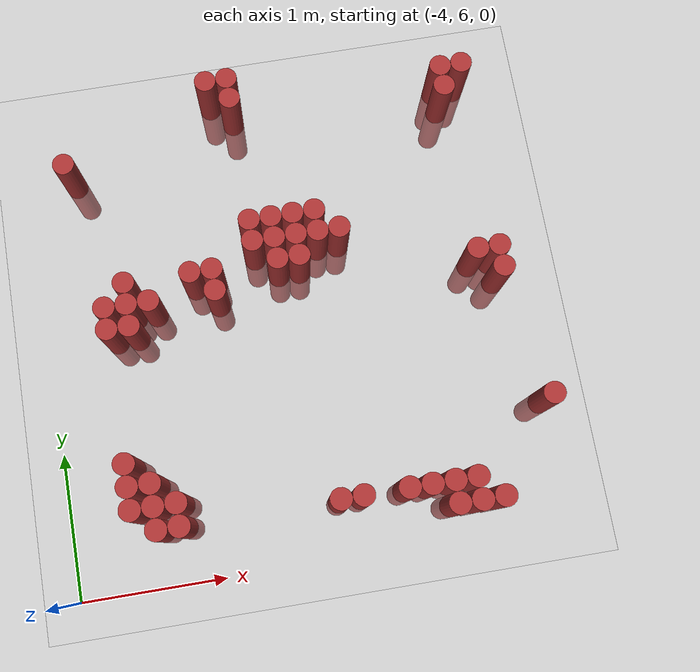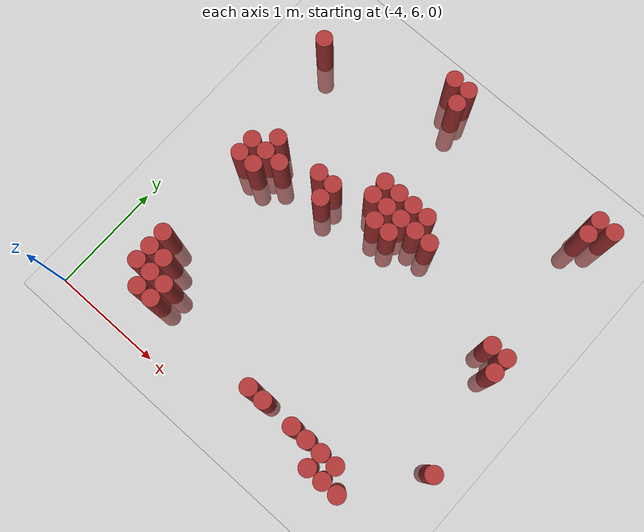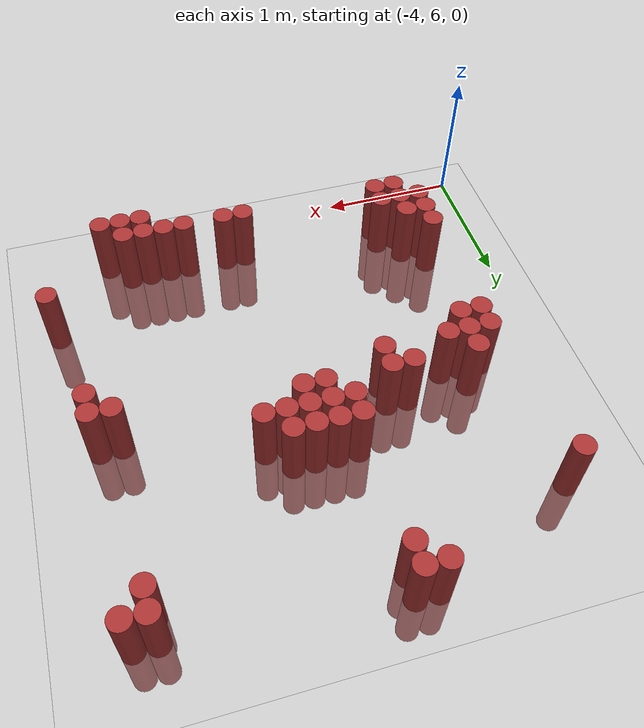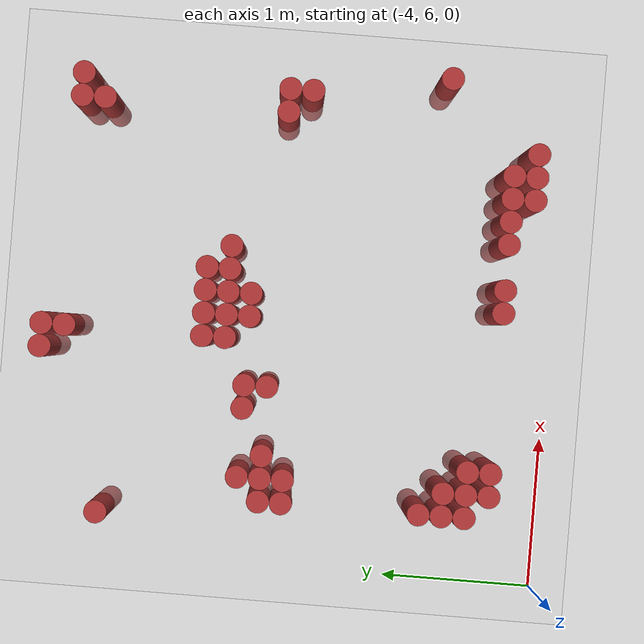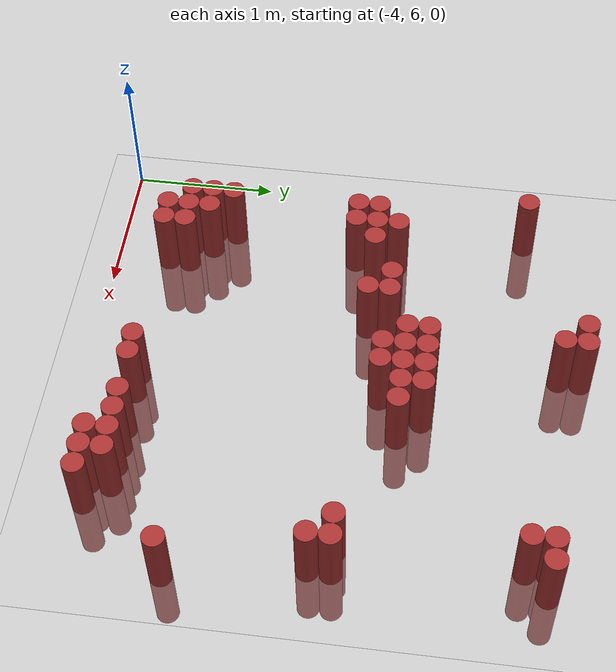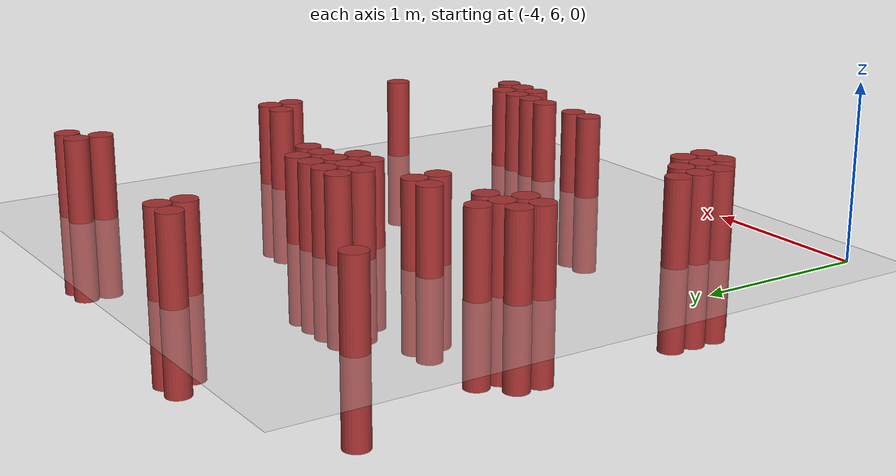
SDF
<sdf version="1.6">
 <world name="default">
  <model name="ground_plane">
   <static>1</static>
   <link name="link">
    <collision name="collision">
     <geometry><plane><normal>0 0 1</normal><size>100 100</size></plane></geometry>
     <surface><friction><ode><mu>100</mu><mu2>50</mu2></ode></friction></surface>
    </collision>
    <visual name="visual">
     <cast_shadows>0</cast_shadows>
     <geometry><plane><normal>0 0 1</normal><size>100 100</size></plane></geometry>
     <material>
      <script><uri>file://media/materials/scripts/gazebo.material</uri><name>Gazebo/Grey</name></script>
     </material>
    </visual>
   </link>
  </model>
  <model name="unit_cylinder_164">
   <static>1</static>
   <pose>-3.675000 8.925000 0.000000 0.000000 0.000000 0.000000</pose>
   <link name="link">
    <inertial>
     <mass>1</mass>
     <inertia><ixx>0.145833</ixx><ixy>0</ixy><ixz>0</ixz><iyy>0.145833</iyy><iyz>0</iyz><izz>0.125</izz></inertia>
    </inertial>
    <collision name="collision">
     <geometry><cylinder><radius>0.075000</radius><length>1</length></cylinder></geometry>
    </collision>
    <visual name="visual">
     <geometry><cylinder><radius>0.075000</radius><length>1</length></cylinder></geometry>
     <material>
      <ambient>0.648000 0.192000 0.192000 1</ambient>
      <diffuse>0.648000 0.192000 0.192000 1</diffuse>
     </material>
     <material>
      <script><name>Gazebo/Grey</name><uri>file://media/materials/scripts/gazebo.material</uri></script>
     </material>
    </visual>
   </link>
  </model>
  <model name="unit_cylinder_165">
   <static>1</static>
   <pose>-3.525000 6.525000 0.000000 0.000000 0.000000 0.000000</pose>
   <link name="link">
    <inertial>
     <mass>1</mass>
     <inertia><ixx>0.145833</ixx><ixy>0</ixy><ixz>0</ixz><iyy>0.145833</iyy><iyz>0</iyz><izz>0.125</izz></inertia>
    </inertial>
    <collision name="collision">
     <geometry><cylinder><radius>0.075000</radius><length>1</length></cylinder></geometry>
    </collision>
    <visual name="visual">
     <geometry><cylinder><radius>0.075000</radius><length>1</length></cylinder></geometry>
     <material>
      <ambient>0.648000 0.192000 0.192000 1</ambient>
      <diffuse>0.648000 0.192000 0.192000 1</diffuse>
     </material>
     <material>
      <script><name>Gazebo/Grey</name><uri>file://media/materials/scripts/gazebo.material</uri></script>
     </material>
    </visual>
   </link>
  </model>
  <model name="unit_cylinder_166">
   <static>1</static>
   <pose>-3.525000 6.675000 0.000000 0.000000 0.000000 0.000000</pose>
   <link name="link">
    <inertial>
     <mass>1</mass>
     <inertia><ixx>0.145833</ixx><ixy>0</ixy><ixz>0</ixz><iyy>0.145833</iyy><iyz>0</iyz><izz>0.125</izz></inertia>
    </inertial>
    <collision name="collision">
     <geometry><cylinder><radius>0.075000</radius><length>1</length></cylinder></geometry>
    </collision>
    <visual name="visual">
     <geometry><cylinder><radius>0.075000</radius><length>1</length></cylinder></geometry>
     <material>
      <ambient>0.648000 0.192000 0.192000 1</ambient>
      <diffuse>0.648000 0.192000 0.192000 1</diffuse>
     </material>
     <material>
      <script><name>Gazebo/Grey</name><uri>file://media/materials/scripts/gazebo.material</uri></script>
     </material>
    </visual>
   </link>
  </model>
  <model name="unit_cylinder_167">
   <static>1</static>
   <pose>-3.525000 6.825000 0.000000 0.000000 0.000000 0.000000</pose>
   <link name="link">
    <inertial>
     <mass>1</mass>
     <inertia><ixx>0.145833</ixx><ixy>0</ixy><ixz>0</ixz><iyy>0.145833</iyy><iyz>0</iyz><izz>0.125</izz></inertia>
    </inertial>
    <collision name="collision">
     <geometry><cylinder><radius>0.075000</radius><length>1</length></cylinder></geometry>
    </collision>
    <visual name="visual">
     <geometry><cylinder><radius>0.075000</radius><length>1</length></cylinder></geometry>
     <material>
      <ambient>0.648000 0.192000 0.192000 1</ambient>
      <diffuse>0.648000 0.192000 0.192000 1</diffuse>
     </material>
     <material>
      <script><name>Gazebo/Grey</name><uri>file://media/materials/scripts/gazebo.material</uri></script>
     </material>
    </visual>
   </link>
  </model>
  <model name="unit_cylinder_168">
   <static>1</static>
   <pose>-3.525000 7.725000 0.000000 0.000000 0.000000 0.000000</pose>
   <link name="link">
    <inertial>
     <mass>1</mass>
     <inertia><ixx>0.145833</ixx><ixy>0</ixy><ixz>0</ixz><iyy>0.145833</iyy><iyz>0</iyz><izz>0.125</izz></inertia>
    </inertial>
    <collision name="collision">
     <geometry><cylinder><radius>0.075000</radius><length>1</length></cylinder></geometry>
    </collision>
    <visual name="visual">
     <geometry><cylinder><radius>0.075000</radius><length>1</length></cylinder></geometry>
     <material>
      <ambient>0.648000 0.192000 0.192000 1</ambient>
      <diffuse>0.648000 0.192000 0.192000 1</diffuse>
     </material>
     <material>
      <script><name>Gazebo/Grey</name><uri>file://media/materials/scripts/gazebo.material</uri></script>
     </material>
    </visual>
   </link>
  </model>
  <model name="unit_cylinder_169">
   <static>1</static>
   <pose>-3.525000 7.875000 0.000000 0.000000 0.000000 0.000000</pose>
   <link name="link">
    <inertial>
     <mass>1</mass>
     <inertia><ixx>0.145833</ixx><ixy>0</ixy><ixz>0</ixz><iyy>0.145833</iyy><iyz>0</iyz><izz>0.125</izz></inertia>
    </inertial>
    <collision name="collision">
     <geometry><cylinder><radius>0.075000</radius><length>1</length></cylinder></geometry>
    </collision>
    <visual name="visual">
     <geometry><cylinder><radius>0.075000</radius><length>1</length></cylinder></geometry>
     <material>
      <ambient>0.648000 0.192000 0.192000 1</ambient>
      <diffuse>0.648000 0.192000 0.192000 1</diffuse>
     </material>
     <material>
      <script><name>Gazebo/Grey</name><uri>file://media/materials/scripts/gazebo.material</uri></script>
     </material>
    </visual>
   </link>
  </model>
  <model name="unit_cylinder_170">
   <static>1</static>
   <pose>-3.375000 6.375000 0.000000 0.000000 0.000000 0.000000</pose>
   <link name="link">
    <inertial>
     <mass>1</mass>
     <inertia><ixx>0.145833</ixx><ixy>0</ixy><ixz>0</ixz><iyy>0.145833</iyy><iyz>0</iyz><izz>0.125</izz></inertia>
    </inertial>
    <collision name="collision">
     <geometry><cylinder><radius>0.075000</radius><length>1</length></cylinder></geometry>
    </collision>
    <visual name="visual">
     <geometry><cylinder><radius>0.075000</radius><length>1</length></cylinder></geometry>
     <material>
      <ambient>0.648000 0.192000 0.192000 1</ambient>
      <diffuse>0.648000 0.192000 0.192000 1</diffuse>
     </material>
     <material>
      <script><name>Gazebo/Grey</name><uri>file://media/materials/scripts/gazebo.material</uri></script>
     </material>
    </visual>
   </link>
  </model>
  <model name="unit_cylinder_171">
   <static>1</static>
   <pose>-3.375000 6.525000 0.000000 0.000000 0.000000 0.000000</pose>
   <link name="link">
    <inertial>
     <mass>1</mass>
     <inertia><ixx>0.145833</ixx><ixy>0</ixy><ixz>0</ixz><iyy>0.145833</iyy><iyz>0</iyz><izz>0.125</izz></inertia>
    </inertial>
    <collision name="collision">
     <geometry><cylinder><radius>0.075000</radius><length>1</length></cylinder></geometry>
    </collision>
    <visual name="visual">
     <geometry><cylinder><radius>0.075000</radius><length>1</length></cylinder></geometry>
     <material>
      <ambient>0.648000 0.192000 0.192000 1</ambient>
      <diffuse>0.648000 0.192000 0.192000 1</diffuse>
     </material>
     <material>
      <script><name>Gazebo/Grey</name><uri>file://media/materials/scripts/gazebo.material</uri></script>
     </material>
    </visual>
   </link>
  </model>
  <model name="unit_cylinder_172">
   <static>1</static>
   <pose>-3.375000 6.675000 0.000000 0.000000 0.000000 0.000000</pose>
   <link name="link">
    <inertial>
     <mass>1</mass>
     <inertia><ixx>0.145833</ixx><ixy>0</ixy><ixz>0</ixz><iyy>0.145833</iyy><iyz>0</iyz><izz>0.125</izz></inertia>
    </inertial>
    <collision name="collision">
     <geometry><cylinder><radius>0.075000</radius><length>1</length></cylinder></geometry>
    </collision>
    <visual name="visual">
     <geometry><cylinder><radius>0.075000</radius><length>1</length></cylinder></geometry>
     <material>
      <ambient>0.648000 0.192000 0.192000 1</ambient>
      <diffuse>0.648000 0.192000 0.192000 1</diffuse>
     </material>
     <material>
      <script><name>Gazebo/Grey</name><uri>file://media/materials/scripts/gazebo.material</uri></script>
     </material>
    </visual>
   </link>
  </model>
  <model name="unit_cylinder_173">
   <static>1</static>
   <pose>-3.375000 7.725000 0.000000 0.000000 0.000000 0.000000</pose>
   <link name="link">
    <inertial>
     <mass>1</mass>
     <inertia><ixx>0.145833</ixx><ixy>0</ixy><ixz>0</ixz><iyy>0.145833</iyy><iyz>0</iyz><izz>0.125</izz></inertia>
    </inertial>
    <collision name="collision">
     <geometry><cylinder><radius>0.075000</radius><length>1</length></cylinder></geometry>
    </collision>
    <visual name="visual">
     <geometry><cylinder><radius>0.075000</radius><length>1</length></cylinder></geometry>
     <material>
      <ambient>0.648000 0.192000 0.192000 1</ambient>
      <diffuse>0.648000 0.192000 0.192000 1</diffuse>
     </material>
     <material>
      <script><name>Gazebo/Grey</name><uri>file://media/materials/scripts/gazebo.material</uri></script>
     </material>
    </visual>
   </link>
  </model>
  <model name="unit_cylinder_174">
   <static>1</static>
   <pose>-3.375000 7.875000 0.000000 0.000000 0.000000 0.000000</pose>
   <link name="link">
    <inertial>
     <mass>1</mass>
     <inertia><ixx>0.145833</ixx><ixy>0</ixy><ixz>0</ixz><iyy>0.145833</iyy><iyz>0</iyz><izz>0.125</izz></inertia>
    </inertial>
    <collision name="collision">
     <geometry><cylinder><radius>0.075000</radius><length>1</length></cylinder></geometry>
    </collision>
    <visual name="visual">
     <geometry><cylinder><radius>0.075000</radius><length>1</length></cylinder></geometry>
     <material>
      <ambient>0.648000 0.192000 0.192000 1</ambient>
      <diffuse>0.648000 0.192000 0.192000 1</diffuse>
     </material>
     <material>
      <script><name>Gazebo/Grey</name><uri>file://media/materials/scripts/gazebo.material</uri></script>
     </material>
    </visual>
   </link>
  </model>
  <model name="unit_cylinder_175">
   <static>1</static>
   <pose>-3.375000 8.025000 0.000000 0.000000 0.000000 0.000000</pose>
   <link name="link">
    <inertial>
     <mass>1</mass>
     <inertia><ixx>0.145833</ixx><ixy>0</ixy><ixz>0</ixz><iyy>0.145833</iyy><iyz>0</iyz><izz>0.125</izz></inertia>
    </inertial>
    <collision name="collision">
     <geometry><cylinder><radius>0.075000</radius><length>1</length></cylinder></geometry>
    </collision>
    <visual name="visual">
     <geometry><cylinder><radius>0.075000</radius><length>1</length></cylinder></geometry>
     <material>
      <ambient>0.648000 0.192000 0.192000 1</ambient>
      <diffuse>0.648000 0.192000 0.192000 1</diffuse>
     </material>
     <material>
      <script><name>Gazebo/Grey</name><uri>file://media/materials/scripts/gazebo.material</uri></script>
     </material>
    </visual>
   </link>
  </model>
  <model name="unit_cylinder_176">
   <static>1</static>
   <pose>-3.225000 6.375000 0.000000 0.000000 0.000000 0.000000</pose>
   <link name="link">
    <inertial>
     <mass>1</mass>
     <inertia><ixx>0.145833</ixx><ixy>0</ixy><ixz>0</ixz><iyy>0.145833</iyy><iyz>0</iyz><izz>0.125</izz></inertia>
    </inertial>
    <collision name="collision">
     <geometry><cylinder><radius>0.075000</radius><length>1</length></cylinder></geometry>
    </collision>
    <visual name="visual">
     <geometry><cylinder><radius>0.075000</radius><length>1</length></cylinder></geometry>
     <material>
      <ambient>0.648000 0.192000 0.192000 1</ambient>
      <diffuse>0.648000 0.192000 0.192000 1</diffuse>
     </material>
     <material>
      <script><name>Gazebo/Grey</name><uri>file://media/materials/scripts/gazebo.material</uri></script>
     </material>
    </visual>
   </link>
  </model>
  <model name="unit_cylinder_177">
   <static>1</static>
   <pose>-3.225000 6.525000 0.000000 0.000000 0.000000 0.000000</pose>
   <link name="link">
    <inertial>
     <mass>1</mass>
     <inertia><ixx>0.145833</ixx><ixy>0</ixy><ixz>0</ixz><iyy>0.145833</iyy><iyz>0</iyz><izz>0.125</izz></inertia>
    </inertial>
    <collision name="collision">
     <geometry><cylinder><radius>0.075000</radius><length>1</length></cylinder></geometry>
    </collision>
    <visual name="visual">
     <geometry><cylinder><radius>0.075000</radius><length>1</length></cylinder></geometry>
     <material>
      <ambient>0.648000 0.192000 0.192000 1</ambient>
      <diffuse>0.648000 0.192000 0.192000 1</diffuse>
     </material>
     <material>
      <script><name>Gazebo/Grey</name><uri>file://media/materials/scripts/gazebo.material</uri></script>
     </material>
    </visual>
   </link>
  </model>
  <model name="unit_cylinder_178">
   <static>1</static>
   <pose>-3.225000 7.875000 0.000000 0.000000 0.000000 0.000000</pose>
   <link name="link">
    <inertial>
     <mass>1</mass>
     <inertia><ixx>0.145833</ixx><ixy>0</ixy><ixz>0</ixz><iyy>0.145833</iyy><iyz>0</iyz><izz>0.125</izz></inertia>
    </inertial>
    <collision name="collision">
     <geometry><cylinder><radius>0.075000</radius><length>1</length></cylinder></geometry>
    </collision>
    <visual name="visual">
     <geometry><cylinder><radius>0.075000</radius><length>1</length></cylinder></geometry>
     <material>
      <ambient>0.648000 0.192000 0.192000 1</ambient>
      <diffuse>0.648000 0.192000 0.192000 1</diffuse>
     </material>
     <material>
      <script><name>Gazebo/Grey</name><uri>file://media/materials/scripts/gazebo.material</uri></script>
     </material>
    </visual>
   </link>
  </model>
  <model name="unit_cylinder_180">
   <static>1</static>
   <pose>-2.925000 8.025000 0.000000 0.000000 0.000000 0.000000</pose>
   <link name="link">
    <inertial>
     <mass>1</mass>
     <inertia><ixx>0.145833</ixx><ixy>0</ixy><ixz>0</ixz><iyy>0.145833</iyy><iyz>0</iyz><izz>0.125</izz></inertia>
    </inertial>
    <collision name="collision">
     <geometry><cylinder><radius>0.075000</radius><length>1</length></cylinder></geometry>
    </collision>
    <visual name="visual">
     <geometry><cylinder><radius>0.075000</radius><length>1</length></cylinder></geometry>
     <material>
      <ambient>0.648000 0.192000 0.192000 1</ambient>
      <diffuse>0.648000 0.192000 0.192000 1</diffuse>
     </material>
     <material>
      <script><name>Gazebo/Grey</name><uri>file://media/materials/scripts/gazebo.material</uri></script>
     </material>
    </visual>
   </link>
  </model>
  <model name="unit_cylinder_181">
   <static>1</static>
   <pose>-2.775000 7.875000 0.000000 0.000000 0.000000 0.000000</pose>
   <link name="link">
    <inertial>
     <mass>1</mass>
     <inertia><ixx>0.145833</ixx><ixy>0</ixy><ixz>0</ixz><iyy>0.145833</iyy><iyz>0</iyz><izz>0.125</izz></inertia>
    </inertial>
    <collision name="collision">
     <geometry><cylinder><radius>0.075000</radius><length>1</length></cylinder></geometry>
    </collision>
    <visual name="visual">
     <geometry><cylinder><radius>0.075000</radius><length>1</length></cylinder></geometry>
     <material>
      <ambient>0.648000 0.192000 0.192000 1</ambient>
      <diffuse>0.648000 0.192000 0.192000 1</diffuse>
     </material>
     <material>
      <script><name>Gazebo/Grey</name><uri>file://media/materials/scripts/gazebo.material</uri></script>
     </material>
    </visual>
   </link>
  </model>
  <model name="unit_cylinder_182">
   <static>1</static>
   <pose>-2.775000 8.025000 0.000000 0.000000 0.000000 0.000000</pose>
   <link name="link">
    <inertial>
     <mass>1</mass>
     <inertia><ixx>0.145833</ixx><ixy>0</ixy><ixz>0</ixz><iyy>0.145833</iyy><iyz>0</iyz><izz>0.125</izz></inertia>
    </inertial>
    <collision name="collision">
     <geometry><cylinder><radius>0.075000</radius><length>1</length></cylinder></geometry>
    </collision>
    <visual name="visual">
     <geometry><cylinder><radius>0.075000</radius><length>1</length></cylinder></geometry>
     <material>
      <ambient>0.648000 0.192000 0.192000 1</ambient>
      <diffuse>0.648000 0.192000 0.192000 1</diffuse>
     </material>
     <material>
      <script><name>Gazebo/Grey</name><uri>file://media/materials/scripts/gazebo.material</uri></script>
     </material>
    </visual>
   </link>
  </model>
  <model name="unit_cylinder_183">
   <static>1</static>
   <pose>-2.625000 9.375000 0.000000 0.000000 0.000000 0.000000</pose>
   <link name="link">
    <inertial>
     <mass>1</mass>
     <inertia><ixx>0.145833</ixx><ixy>0</ixy><ixz>0</ixz><iyy>0.145833</iyy><iyz>0</iyz><izz>0.125</izz></inertia>
    </inertial>
    <collision name="collision">
     <geometry><cylinder><radius>0.075000</radius><length>1</length></cylinder></geometry>
    </collision>
    <visual name="visual">
     <geometry><cylinder><radius>0.075000</radius><length>1</length></cylinder></geometry>
     <material>
      <ambient>0.648000 0.192000 0.192000 1</ambient>
      <diffuse>0.648000 0.192000 0.192000 1</diffuse>
     </material>
     <material>
      <script><name>Gazebo/Grey</name><uri>file://media/materials/scripts/gazebo.material</uri></script>
     </material>
    </visual>
   </link>
  </model>
  <model name="unit_cylinder_184">
   <static>1</static>
   <pose>-2.475000 8.175000 0.000000 0.000000 0.000000 0.000000</pose>
   <link name="link">
    <inertial>
     <mass>1</mass>
     <inertia><ixx>0.145833</ixx><ixy>0</ixy><ixz>0</ixz><iyy>0.145833</iyy><iyz>0</iyz><izz>0.125</izz></inertia>
    </inertial>
    <collision name="collision">
     <geometry><cylinder><radius>0.075000</radius><length>1</length></cylinder></geometry>
    </collision>
    <visual name="visual">
     <geometry><cylinder><radius>0.075000</radius><length>1</length></cylinder></geometry>
     <material>
      <ambient>0.648000 0.192000 0.192000 1</ambient>
      <diffuse>0.648000 0.192000 0.192000 1</diffuse>
     </material>
     <material>
      <script><name>Gazebo/Grey</name><uri>file://media/materials/scripts/gazebo.material</uri></script>
     </material>
    </visual>
   </link>
  </model>
  <model name="unit_cylinder_185">
   <static>1</static>
   <pose>-2.475000 8.325000 0.000000 0.000000 0.000000 0.000000</pose>
   <link name="link">
    <inertial>
     <mass>1</mass>
     <inertia><ixx>0.145833</ixx><ixy>0</ixy><ixz>0</ixz><iyy>0.145833</iyy><iyz>0</iyz><izz>0.125</izz></inertia>
    </inertial>
    <collision name="collision">
     <geometry><cylinder><radius>0.075000</radius><length>1</length></cylinder></geometry>
    </collision>
    <visual name="visual">
     <geometry><cylinder><radius>0.075000</radius><length>1</length></cylinder></geometry>
     <material>
      <ambient>0.648000 0.192000 0.192000 1</ambient>
      <diffuse>0.648000 0.192000 0.192000 1</diffuse>
     </material>
     <material>
      <script><name>Gazebo/Grey</name><uri>file://media/materials/scripts/gazebo.material</uri></script>
     </material>
    </visual>
   </link>
  </model>
  <model name="unit_cylinder_186">
   <static>1</static>
   <pose>-2.475000 9.225000 0.000000 0.000000 0.000000 0.000000</pose>
   <link name="link">
    <inertial>
     <mass>1</mass>
     <inertia><ixx>0.145833</ixx><ixy>0</ixy><ixz>0</ixz><iyy>0.145833</iyy><iyz>0</iyz><izz>0.125</izz></inertia>
    </inertial>
    <collision name="collision">
     <geometry><cylinder><radius>0.075000</radius><length>1</length></cylinder></geometry>
    </collision>
    <visual name="visual">
     <geometry><cylinder><radius>0.075000</radius><length>1</length></cylinder></geometry>
     <material>
      <ambient>0.648000 0.192000 0.192000 1</ambient>
      <diffuse>0.648000 0.192000 0.192000 1</diffuse>
     </material>
     <material>
      <script><name>Gazebo/Grey</name><uri>file://media/materials/scripts/gazebo.material</uri></script>
     </material>
    </visual>
   </link>
  </model>
  <model name="unit_cylinder_187">
   <static>1</static>
   <pose>-2.475000 9.375000 0.000000 0.000000 0.000000 0.000000</pose>
   <link name="link">
    <inertial>
     <mass>1</mass>
     <inertia><ixx>0.145833</ixx><ixy>0</ixy><ixz>0</ixz><iyy>0.145833</iyy><iyz>0</iyz><izz>0.125</izz></inertia>
    </inertial>
    <collision name="collision">
     <geometry><cylinder><radius>0.075000</radius><length>1</length></cylinder></geometry>
    </collision>
    <visual name="visual">
     <geometry><cylinder><radius>0.075000</radius><length>1</length></cylinder></geometry>
     <material>
      <ambient>0.648000 0.192000 0.192000 1</ambient>
      <diffuse>0.648000 0.192000 0.192000 1</diffuse>
     </material>
     <material>
      <script><name>Gazebo/Grey</name><uri>file://media/materials/scripts/gazebo.material</uri></script>
     </material>
    </visual>
   </link>
  </model>
  <model name="unit_cylinder_188">
   <static>1</static>
   <pose>-2.325000 8.025000 0.000000 0.000000 0.000000 0.000000</pose>
   <link name="link">
    <inertial>
     <mass>1</mass>
     <inertia><ixx>0.145833</ixx><ixy>0</ixy><ixz>0</ixz><iyy>0.145833</iyy><iyz>0</iyz><izz>0.125</izz></inertia>
    </inertial>
    <collision name="collision">
     <geometry><cylinder><radius>0.075000</radius><length>1</length></cylinder></geometry>
    </collision>
    <visual name="visual">
     <geometry><cylinder><radius>0.075000</radius><length>1</length></cylinder></geometry>
     <material>
      <ambient>0.648000 0.192000 0.192000 1</ambient>
      <diffuse>0.648000 0.192000 0.192000 1</diffuse>
     </material>
     <material>
      <script><name>Gazebo/Grey</name><uri>file://media/materials/scripts/gazebo.material</uri></script>
     </material>
    </visual>
   </link>
  </model>
  <model name="unit_cylinder_189">
   <static>1</static>
   <pose>-2.325000 8.175000 0.000000 0.000000 0.000000 0.000000</pose>
   <link name="link">
    <inertial>
     <mass>1</mass>
     <inertia><ixx>0.145833</ixx><ixy>0</ixy><ixz>0</ixz><iyy>0.145833</iyy><iyz>0</iyz><izz>0.125</izz></inertia>
    </inertial>
    <collision name="collision">
     <geometry><cylinder><radius>0.075000</radius><length>1</length></cylinder></geometry>
    </collision>
    <visual name="visual">
     <geometry><cylinder><radius>0.075000</radius><length>1</length></cylinder></geometry>
     <material>
      <ambient>0.648000 0.192000 0.192000 1</ambient>
      <diffuse>0.648000 0.192000 0.192000 1</diffuse>
     </material>
     <material>
      <script><name>Gazebo/Grey</name><uri>file://media/materials/scripts/gazebo.material</uri></script>
     </material>
    </visual>
   </link>
  </model>
  <model name="unit_cylinder_190">
   <static>1</static>
   <pose>-2.325000 8.325000 0.000000 0.000000 0.000000 0.000000</pose>
   <link name="link">
    <inertial>
     <mass>1</mass>
     <inertia><ixx>0.145833</ixx><ixy>0</ixy><ixz>0</ixz><iyy>0.145833</iyy><iyz>0</iyz><izz>0.125</izz></inertia>
    </inertial>
    <collision name="collision">
     <geometry><cylinder><radius>0.075000</radius><length>1</length></cylinder></geometry>
    </collision>
    <visual name="visual">
     <geometry><cylinder><radius>0.075000</radius><length>1</length></cylinder></geometry>
     <material>
      <ambient>0.648000 0.192000 0.192000 1</ambient>
      <diffuse>0.648000 0.192000 0.192000 1</diffuse>
     </material>
     <material>
      <script><name>Gazebo/Grey</name><uri>file://media/materials/scripts/gazebo.material</uri></script>
     </material>
    </visual>
   </link>
  </model>
  <model name="unit_cylinder_192">
   <static>1</static>
   <pose>-2.175000 6.375000 0.000000 0.000000 0.000000 0.000000</pose>
   <link name="link">
    <inertial>
     <mass>1</mass>
     <inertia><ixx>0.145833</ixx><ixy>0</ixy><ixz>0</ixz><iyy>0.145833</iyy><iyz>0</iyz><izz>0.125</izz></inertia>
    </inertial>
    <collision name="collision">
     <geometry><cylinder><radius>0.075000</radius><length>1</length></cylinder></geometry>
    </collision>
    <visual name="visual">
     <geometry><cylinder><radius>0.075000</radius><length>1</length></cylinder></geometry>
     <material>
      <ambient>0.648000 0.192000 0.192000 1</ambient>
      <diffuse>0.648000 0.192000 0.192000 1</diffuse>
     </material>
     <material>
      <script><name>Gazebo/Grey</name><uri>file://media/materials/scripts/gazebo.material</uri></script>
     </material>
    </visual>
   </link>
  </model>
  <model name="unit_cylinder_193">
   <static>1</static>
   <pose>-2.175000 8.025000 0.000000 0.000000 0.000000 0.000000</pose>
   <link name="link">
    <inertial>
     <mass>1</mass>
     <inertia><ixx>0.145833</ixx><ixy>0</ixy><ixz>0</ixz><iyy>0.145833</iyy><iyz>0</iyz><izz>0.125</izz></inertia>
    </inertial>
    <collision name="collision">
     <geometry><cylinder><radius>0.075000</radius><length>1</length></cylinder></geometry>
    </collision>
    <visual name="visual">
     <geometry><cylinder><radius>0.075000</radius><length>1</length></cylinder></geometry>
     <material>
      <ambient>0.648000 0.192000 0.192000 1</ambient>
      <diffuse>0.648000 0.192000 0.192000 1</diffuse>
     </material>
     <material>
      <script><name>Gazebo/Grey</name><uri>file://media/materials/scripts/gazebo.material</uri></script>
     </material>
    </visual>
   </link>
  </model>
  <model name="unit_cylinder_194">
   <static>1</static>
   <pose>-2.175000 8.175000 0.000000 0.000000 0.000000 0.000000</pose>
   <link name="link">
    <inertial>
     <mass>1</mass>
     <inertia><ixx>0.145833</ixx><ixy>0</ixy><ixz>0</ixz><iyy>0.145833</iyy><iyz>0</iyz><izz>0.125</izz></inertia>
    </inertial>
    <collision name="collision">
     <geometry><cylinder><radius>0.075000</radius><length>1</length></cylinder></geometry>
    </collision>
    <visual name="visual">
     <geometry><cylinder><radius>0.075000</radius><length>1</length></cylinder></geometry>
     <material>
      <ambient>0.648000 0.192000 0.192000 1</ambient>
      <diffuse>0.648000 0.192000 0.192000 1</diffuse>
     </material>
     <material>
      <script><name>Gazebo/Grey</name><uri>file://media/materials/scripts/gazebo.material</uri></script>
     </material>
    </visual>
   </link>
  </model>
  <model name="unit_cylinder_195">
   <static>1</static>
   <pose>-2.175000 8.325000 0.000000 0.000000 0.000000 0.000000</pose>
   <link name="link">
    <inertial>
     <mass>1</mass>
     <inertia><ixx>0.145833</ixx><ixy>0</ixy><ixz>0</ixz><iyy>0.145833</iyy><iyz>0</iyz><izz>0.125</izz></inertia>
    </inertial>
    <collision name="collision">
     <geometry><cylinder><radius>0.075000</radius><length>1</length></cylinder></geometry>
    </collision>
    <visual name="visual">
     <geometry><cylinder><radius>0.075000</radius><length>1</length></cylinder></geometry>
     <material>
      <ambient>0.648000 0.192000 0.192000 1</ambient>
      <diffuse>0.648000 0.192000 0.192000 1</diffuse>
     </material>
     <material>
      <script><name>Gazebo/Grey</name><uri>file://media/materials/scripts/gazebo.material</uri></script>
     </material>
    </visual>
   </link>
  </model>
  <model name="unit_cylinder_197">
   <static>1</static>
   <pose>-2.025000 6.375000 0.000000 0.000000 0.000000 0.000000</pose>
   <link name="link">
    <inertial>
     <mass>1</mass>
     <inertia><ixx>0.145833</ixx><ixy>0</ixy><ixz>0</ixz><iyy>0.145833</iyy><iyz>0</iyz><izz>0.125</izz></inertia>
    </inertial>
    <collision name="collision">
     <geometry><cylinder><radius>0.075000</radius><length>1</length></cylinder></geometry>
    </collision>
    <visual name="visual">
     <geometry><cylinder><radius>0.075000</radius><length>1</length></cylinder></geometry>
     <material>
      <ambient>0.648000 0.192000 0.192000 1</ambient>
      <diffuse>0.648000 0.192000 0.192000 1</diffuse>
     </material>
     <material>
      <script><name>Gazebo/Grey</name><uri>file://media/materials/scripts/gazebo.material</uri></script>
     </material>
    </visual>
   </link>
  </model>
  <model name="unit_cylinder_198">
   <static>1</static>
   <pose>-2.025000 8.175000 0.000000 0.000000 0.000000 0.000000</pose>
   <link name="link">
    <inertial>
     <mass>1</mass>
     <inertia><ixx>0.145833</ixx><ixy>0</ixy><ixz>0</ixz><iyy>0.145833</iyy><iyz>0</iyz><izz>0.125</izz></inertia>
    </inertial>
    <collision name="collision">
     <geometry><cylinder><radius>0.075000</radius><length>1</length></cylinder></geometry>
    </collision>
    <visual name="visual">
     <geometry><cylinder><radius>0.075000</radius><length>1</length></cylinder></geometry>
     <material>
      <ambient>0.648000 0.192000 0.192000 1</ambient>
      <diffuse>0.648000 0.192000 0.192000 1</diffuse>
     </material>
     <material>
      <script><name>Gazebo/Grey</name><uri>file://media/materials/scripts/gazebo.material</uri></script>
     </material>
    </visual>
   </link>
  </model>
  <model name="unit_cylinder_199">
   <static>1</static>
   <pose>-2.025000 8.325000 0.000000 0.000000 0.000000 0.000000</pose>
   <link name="link">
    <inertial>
     <mass>1</mass>
     <inertia><ixx>0.145833</ixx><ixy>0</ixy><ixz>0</ixz><iyy>0.145833</iyy><iyz>0</iyz><izz>0.125</izz></inertia>
    </inertial>
    <collision name="collision">
     <geometry><cylinder><radius>0.075000</radius><length>1</length></cylinder></geometry>
    </collision>
    <visual name="visual">
     <geometry><cylinder><radius>0.075000</radius><length>1</length></cylinder></geometry>
     <material>
      <ambient>0.648000 0.192000 0.192000 1</ambient>
      <diffuse>0.648000 0.192000 0.192000 1</diffuse>
     </material>
     <material>
      <script><name>Gazebo/Grey</name><uri>file://media/materials/scripts/gazebo.material</uri></script>
     </material>
    </visual>
   </link>
  </model>
  <model name="unit_cylinder_203">
   <static>1</static>
   <pose>-1.875000 8.175000 0.000000 0.000000 0.000000 0.000000</pose>
   <link name="link">
    <inertial>
     <mass>1</mass>
     <inertia><ixx>0.145833</ixx><ixy>0</ixy><ixz>0</ixz><iyy>0.145833</iyy><iyz>0</iyz><izz>0.125</izz></inertia>
    </inertial>
    <collision name="collision">
     <geometry><cylinder><radius>0.075000</radius><length>1</length></cylinder></geometry>
    </collision>
    <visual name="visual">
     <geometry><cylinder><radius>0.075000</radius><length>1</length></cylinder></geometry>
     <material>
      <ambient>0.648000 0.192000 0.192000 1</ambient>
      <diffuse>0.648000 0.192000 0.192000 1</diffuse>
     </material>
     <material>
      <script><name>Gazebo/Grey</name><uri>file://media/materials/scripts/gazebo.material</uri></script>
     </material>
    </visual>
   </link>
  </model>
  <model name="unit_cylinder_206">
   <static>1</static>
   <pose>-1.725000 6.375000 0.000000 0.000000 0.000000 0.000000</pose>
   <link name="link">
    <inertial>
     <mass>1</mass>
     <inertia><ixx>0.145833</ixx><ixy>0</ixy><ixz>0</ixz><iyy>0.145833</iyy><iyz>0</iyz><izz>0.125</izz></inertia>
    </inertial>
    <collision name="collision">
     <geometry><cylinder><radius>0.075000</radius><length>1</length></cylinder></geometry>
    </collision>
    <visual name="visual">
     <geometry><cylinder><radius>0.075000</radius><length>1</length></cylinder></geometry>
     <material>
      <ambient>0.648000 0.192000 0.192000 1</ambient>
      <diffuse>0.648000 0.192000 0.192000 1</diffuse>
     </material>
     <material>
      <script><name>Gazebo/Grey</name><uri>file://media/materials/scripts/gazebo.material</uri></script>
     </material>
    </visual>
   </link>
  </model>
  <model name="unit_cylinder_208">
   <static>1</static>
   <pose>-1.575000 6.375000 0.000000 0.000000 0.000000 0.000000</pose>
   <link name="link">
    <inertial>
     <mass>1</mass>
     <inertia><ixx>0.145833</ixx><ixy>0</ixy><ixz>0</ixz><iyy>0.145833</iyy><iyz>0</iyz><izz>0.125</izz></inertia>
    </inertial>
    <collision name="collision">
     <geometry><cylinder><radius>0.075000</radius><length>1</length></cylinder></geometry>
    </collision>
    <visual name="visual">
     <geometry><cylinder><radius>0.075000</radius><length>1</length></cylinder></geometry>
     <material>
      <ambient>0.648000 0.192000 0.192000 1</ambient>
      <diffuse>0.648000 0.192000 0.192000 1</diffuse>
     </material>
     <material>
      <script><name>Gazebo/Grey</name><uri>file://media/materials/scripts/gazebo.material</uri></script>
     </material>
    </visual>
   </link>
  </model>
  <model name="unit_cylinder_212">
   <static>1</static>
   <pose>-1.425000 6.225000 0.000000 0.000000 0.000000 0.000000</pose>
   <link name="link">
    <inertial>
     <mass>1</mass>
     <inertia><ixx>0.145833</ixx><ixy>0</ixy><ixz>0</ixz><iyy>0.145833</iyy><iyz>0</iyz><izz>0.125</izz></inertia>
    </inertial>
    <collision name="collision">
     <geometry><cylinder><radius>0.075000</radius><length>1</length></cylinder></geometry>
    </collision>
    <visual name="visual">
     <geometry><cylinder><radius>0.075000</radius><length>1</length></cylinder></geometry>
     <material>
      <ambient>0.648000 0.192000 0.192000 1</ambient>
      <diffuse>0.648000 0.192000 0.192000 1</diffuse>
     </material>
     <material>
      <script><name>Gazebo/Grey</name><uri>file://media/materials/scripts/gazebo.material</uri></script>
     </material>
    </visual>
   </link>
  </model>
  <model name="unit_cylinder_213">
   <static>1</static>
   <pose>-1.425000 6.375000 0.000000 0.000000 0.000000 0.000000</pose>
   <link name="link">
    <inertial>
     <mass>1</mass>
     <inertia><ixx>0.145833</ixx><ixy>0</ixy><ixz>0</ixz><iyy>0.145833</iyy><iyz>0</iyz><izz>0.125</izz></inertia>
    </inertial>
    <collision name="collision">
     <geometry><cylinder><radius>0.075000</radius><length>1</length></cylinder></geometry>
    </collision>
    <visual name="visual">
     <geometry><cylinder><radius>0.075000</radius><length>1</length></cylinder></geometry>
     <material>
      <ambient>0.648000 0.192000 0.192000 1</ambient>
      <diffuse>0.648000 0.192000 0.192000 1</diffuse>
     </material>
     <material>
      <script><name>Gazebo/Grey</name><uri>file://media/materials/scripts/gazebo.material</uri></script>
     </material>
    </visual>
   </link>
  </model>
  <model name="unit_cylinder_216">
   <static>1</static>
   <pose>-1.275000 6.225000 0.000000 0.000000 0.000000 0.000000</pose>
   <link name="link">
    <inertial>
     <mass>1</mass>
     <inertia><ixx>0.145833</ixx><ixy>0</ixy><ixz>0</ixz><iyy>0.145833</iyy><iyz>0</iyz><izz>0.125</izz></inertia>
    </inertial>
    <collision name="collision">
     <geometry><cylinder><radius>0.075000</radius><length>1</length></cylinder></geometry>
    </collision>
    <visual name="visual">
     <geometry><cylinder><radius>0.075000</radius><length>1</length></cylinder></geometry>
     <material>
      <ambient>0.648000 0.192000 0.192000 1</ambient>
      <diffuse>0.648000 0.192000 0.192000 1</diffuse>
     </material>
     <material>
      <script><name>Gazebo/Grey</name><uri>file://media/materials/scripts/gazebo.material</uri></script>
     </material>
    </visual>
   </link>
  </model>
  <model name="unit_cylinder_217">
   <static>1</static>
   <pose>-1.275000 6.375000 0.000000 0.000000 0.000000 0.000000</pose>
   <link name="link">
    <inertial>
     <mass>1</mass>
     <inertia><ixx>0.145833</ixx><ixy>0</ixy><ixz>0</ixz><iyy>0.145833</iyy><iyz>0</iyz><izz>0.125</izz></inertia>
    </inertial>
    <collision name="collision">
     <geometry><cylinder><radius>0.075000</radius><length>1</length></cylinder></geometry>
    </collision>
    <visual name="visual">
     <geometry><cylinder><radius>0.075000</radius><length>1</length></cylinder></geometry>
     <material>
      <ambient>0.648000 0.192000 0.192000 1</ambient>
      <diffuse>0.648000 0.192000 0.192000 1</diffuse>
     </material>
     <material>
      <script><name>Gazebo/Grey</name><uri>file://media/materials/scripts/gazebo.material</uri></script>
     </material>
    </visual>
   </link>
  </model>
  <model name="unit_cylinder_220">
   <static>1</static>
   <pose>-1.125000 6.225000 0.000000 0.000000 0.000000 0.000000</pose>
   <link name="link">
    <inertial>
     <mass>1</mass>
     <inertia><ixx>0.145833</ixx><ixy>0</ixy><ixz>0</ixz><iyy>0.145833</iyy><iyz>0</iyz><izz>0.125</izz></inertia>
    </inertial>
    <collision name="collision">
     <geometry><cylinder><radius>0.075000</radius><length>1</length></cylinder></geometry>
    </collision>
    <visual name="visual">
     <geometry><cylinder><radius>0.075000</radius><length>1</length></cylinder></geometry>
     <material>
      <ambient>0.648000 0.192000 0.192000 1</ambient>
      <diffuse>0.648000 0.192000 0.192000 1</diffuse>
     </material>
     <material>
      <script><name>Gazebo/Grey</name><uri>file://media/materials/scripts/gazebo.material</uri></script>
     </material>
    </visual>
   </link>
  </model>
  <model name="unit_cylinder_222">
   <static>1</static>
   <pose>-0.975000 7.875000 0.000000 0.000000 0.000000 0.000000</pose>
   <link name="link">
    <inertial>
     <mass>1</mass>
     <inertia><ixx>0.145833</ixx><ixy>0</ixy><ixz>0</ixz><iyy>0.145833</iyy><iyz>0</iyz><izz>0.125</izz></inertia>
    </inertial>
    <collision name="collision">
     <geometry><cylinder><radius>0.075000</radius><length>1</length></cylinder></geometry>
    </collision>
    <visual name="visual">
     <geometry><cylinder><radius>0.075000</radius><length>1</length></cylinder></geometry>
     <material>
      <ambient>0.648000 0.192000 0.192000 1</ambient>
      <diffuse>0.648000 0.192000 0.192000 1</diffuse>
     </material>
     <material>
      <script><name>Gazebo/Grey</name><uri>file://media/materials/scripts/gazebo.material</uri></script>
     </material>
    </visual>
   </link>
  </model>
  <model name="unit_cylinder_223">
   <static>1</static>
   <pose>-0.975000 9.075000 0.000000 0.000000 0.000000 0.000000</pose>
   <link name="link">
    <inertial>
     <mass>1</mass>
     <inertia><ixx>0.145833</ixx><ixy>0</ixy><ixz>0</ixz><iyy>0.145833</iyy><iyz>0</iyz><izz>0.125</izz></inertia>
    </inertial>
    <collision name="collision">
     <geometry><cylinder><radius>0.075000</radius><length>1</length></cylinder></geometry>
    </collision>
    <visual name="visual">
     <geometry><cylinder><radius>0.075000</radius><length>1</length></cylinder></geometry>
     <material>
      <ambient>0.648000 0.192000 0.192000 1</ambient>
      <diffuse>0.648000 0.192000 0.192000 1</diffuse>
     </material>
     <material>
      <script><name>Gazebo/Grey</name><uri>file://media/materials/scripts/gazebo.material</uri></script>
     </material>
    </visual>
   </link>
  </model>
  <model name="unit_cylinder_224">
   <static>1</static>
   <pose>-0.975000 9.225000 0.000000 0.000000 0.000000 0.000000</pose>
   <link name="link">
    <inertial>
     <mass>1</mass>
     <inertia><ixx>0.145833</ixx><ixy>0</ixy><ixz>0</ixz><iyy>0.145833</iyy><iyz>0</iyz><izz>0.125</izz></inertia>
    </inertial>
    <collision name="collision">
     <geometry><cylinder><radius>0.075000</radius><length>1</length></cylinder></geometry>
    </collision>
    <visual name="visual">
     <geometry><cylinder><radius>0.075000</radius><length>1</length></cylinder></geometry>
     <material>
      <ambient>0.648000 0.192000 0.192000 1</ambient>
      <diffuse>0.648000 0.192000 0.192000 1</diffuse>
     </material>
     <material>
      <script><name>Gazebo/Grey</name><uri>file://media/materials/scripts/gazebo.material</uri></script>
     </material>
    </visual>
   </link>
  </model>
  <model name="unit_cylinder_225">
   <static>1</static>
   <pose>-0.825000 7.725000 0.000000 0.000000 0.000000 0.000000</pose>
   <link name="link">
    <inertial>
     <mass>1</mass>
     <inertia><ixx>0.145833</ixx><ixy>0</ixy><ixz>0</ixz><iyy>0.145833</iyy><iyz>0</iyz><izz>0.125</izz></inertia>
    </inertial>
    <collision name="collision">
     <geometry><cylinder><radius>0.075000</radius><length>1</length></cylinder></geometry>
    </collision>
    <visual name="visual">
     <geometry><cylinder><radius>0.075000</radius><length>1</length></cylinder></geometry>
     <material>
      <ambient>0.648000 0.192000 0.192000 1</ambient>
      <diffuse>0.648000 0.192000 0.192000 1</diffuse>
     </material>
     <material>
      <script><name>Gazebo/Grey</name><uri>file://media/materials/scripts/gazebo.material</uri></script>
     </material>
    </visual>
   </link>
  </model>
  <model name="unit_cylinder_226">
   <static>1</static>
   <pose>-0.825000 7.875000 0.000000 0.000000 0.000000 0.000000</pose>
   <link name="link">
    <inertial>
     <mass>1</mass>
     <inertia><ixx>0.145833</ixx><ixy>0</ixy><ixz>0</ixz><iyy>0.145833</iyy><iyz>0</iyz><izz>0.125</izz></inertia>
    </inertial>
    <collision name="collision">
     <geometry><cylinder><radius>0.075000</radius><length>1</length></cylinder></geometry>
    </collision>
    <visual name="visual">
     <geometry><cylinder><radius>0.075000</radius><length>1</length></cylinder></geometry>
     <material>
      <ambient>0.648000 0.192000 0.192000 1</ambient>
      <diffuse>0.648000 0.192000 0.192000 1</diffuse>
     </material>
     <material>
      <script><name>Gazebo/Grey</name><uri>file://media/materials/scripts/gazebo.material</uri></script>
     </material>
    </visual>
   </link>
  </model>
  <model name="unit_cylinder_227">
   <static>1</static>
   <pose>-0.825000 9.225000 0.000000 0.000000 0.000000 0.000000</pose>
   <link name="link">
    <inertial>
     <mass>1</mass>
     <inertia><ixx>0.145833</ixx><ixy>0</ixy><ixz>0</ixz><iyy>0.145833</iyy><iyz>0</iyz><izz>0.125</izz></inertia>
    </inertial>
    <collision name="collision">
     <geometry><cylinder><radius>0.075000</radius><length>1</length></cylinder></geometry>
    </collision>
    <visual name="visual">
     <geometry><cylinder><radius>0.075000</radius><length>1</length></cylinder></geometry>
     <material>
      <ambient>0.648000 0.192000 0.192000 1</ambient>
      <diffuse>0.648000 0.192000 0.192000 1</diffuse>
     </material>
     <material>
      <script><name>Gazebo/Grey</name><uri>file://media/materials/scripts/gazebo.material</uri></script>
     </material>
    </visual>
   </link>
  </model>
  <model name="unit_cylinder_229">
   <static>1</static>
   <pose>-0.675000 6.825000 0.000000 0.000000 0.000000 0.000000</pose>
   <link name="link">
    <inertial>
     <mass>1</mass>
     <inertia><ixx>0.145833</ixx><ixy>0</ixy><ixz>0</ixz><iyy>0.145833</iyy><iyz>0</iyz><izz>0.125</izz></inertia>
    </inertial>
    <collision name="collision">
     <geometry><cylinder><radius>0.075000</radius><length>1</length></cylinder></geometry>
    </collision>
    <visual name="visual">
     <geometry><cylinder><radius>0.075000</radius><length>1</length></cylinder></geometry>
     <material>
      <ambient>0.648000 0.192000 0.192000 1</ambient>
      <diffuse>0.648000 0.192000 0.192000 1</diffuse>
     </material>
     <material>
      <script><name>Gazebo/Grey</name><uri>file://media/materials/scripts/gazebo.material</uri></script>
     </material>
    </visual>
   </link>
  </model>
 </world>
</sdf>
